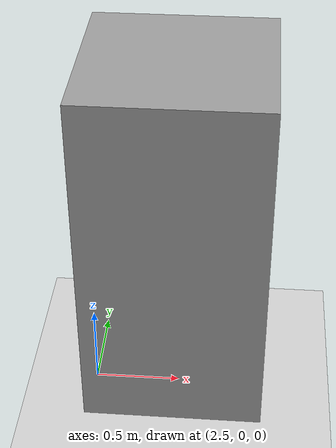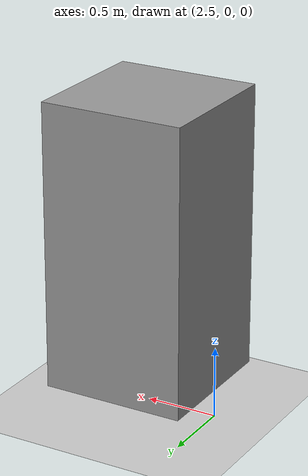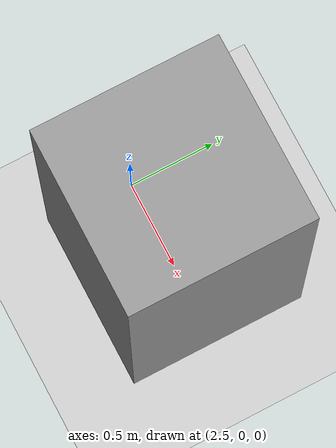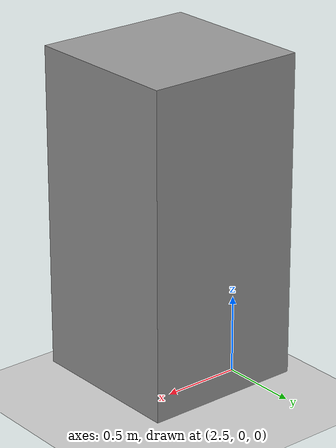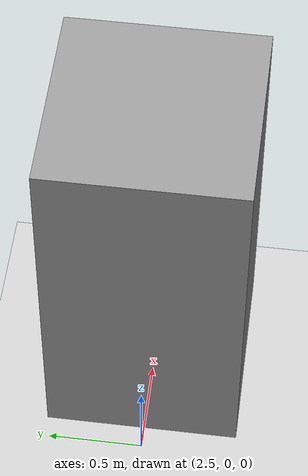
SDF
<sdf version="1.6">
 <world name="default">
  <model name="ground_plane">
   <static>1</static>
   <link name="link">
    <collision name="collision">
     <geometry><plane><normal>0 0 1</normal><size>100 100</size></plane></geometry>
     <surface><friction><ode><mu>100</mu><mu2>50</mu2></ode></friction></surface>
    </collision>
    <visual name="visual">
     <cast_shadows>0</cast_shadows>
     <geometry><plane><normal>0 0 1</normal><size>100 100</size></plane></geometry>
     <material>
      <script><uri>file://media/materials/scripts/gazebo.material</uri><name>Gazebo/Grey</name></script>
     </material>
    </visual>
   </link>
  </model>
  <light name="sun" type="directional">
   <pose>0 0 10 0 -0 0</pose>
   <diffuse>0.8 0.8 0.8 1</diffuse>
   <specular>0.1 0.1 0.1 1</specular>
   <attenuation>
    <range>1000</range>
    <constant>0.9</constant>
    <linear>0.01</linear>
    <quadratic>0.001</quadratic>
   </attenuation>
   <direction>-0.5 0.5 -1</direction>
  </light>
  <gravity>0 0 0</gravity>
  <magnetic_field>6e-06 2.3e-05 -4.2e-05</magnetic_field>
  <atmosphere type="adiabatic"/>
  <physics name="default_physics" default="0" type="ode">
   <max_step_size>0.001</max_step_size>
   <real_time_factor>1</real_time_factor>
   <real_time_update_rate>1000</real_time_update_rate>
  </physics>
  <scene><ambient>0.4 0.4 0.4 1</ambient><background>0.7 0.7 0.7 1</background><shadows>1</shadows></scene>
  <spherical_coordinates>
   <surface_model>EARTH_WGS84</surface_model>
   <latitude_deg>0</latitude_deg>
   <longitude_deg>0</longitude_deg>
   <elevation>0</elevation>
   <heading_deg>0</heading_deg>
  </spherical_coordinates>
  <model name="light_panel">
   <link name="base">
    <inertial>
     <mass>50</mass>
     <inertia><ixx>20.8333</ixx><ixy>0</ixy><ixz>0</ixz><iyy>20.8333</iyy><iyz>0</iyz><izz>8.33333</izz></inertia>
    </inertial>
    <visual name="visual">
     <geometry><box><size>1 1 2</size></box></geometry>
     <material>
      <script><name>Gazebo/Grey</name><uri>file://media/materials/scripts/gazebo.material</uri></script>
     </material>
    </visual>
    <collision name="collision"><geometry><box><size>1 1 2</size></box></geometry></collision>
   </link>
   <plugin name="plugin" filename="libLightControl.so"/>
   <pose>3 0 1.19187 0 -0 -3.14159</pose>
  </model>
 </world>
</sdf>
